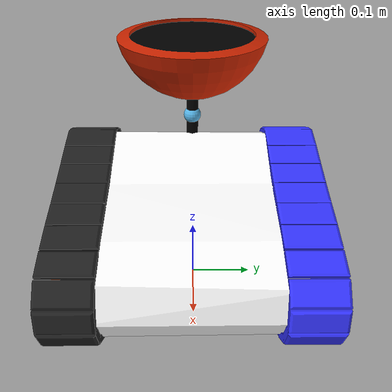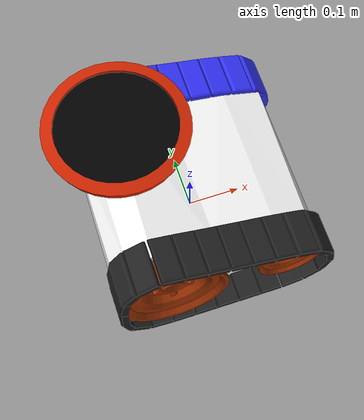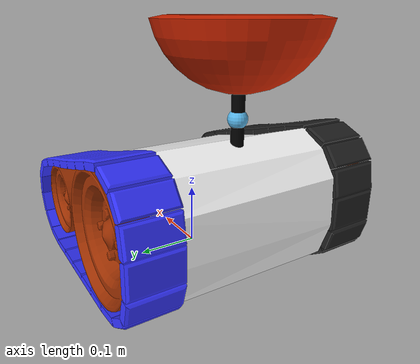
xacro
<?xml version="1.0"?>
<robot xmlns:xacro="http://www.ros.org/wiki/xacro">

    <xacro:include filename="inertia_macros.xacro"/>

    <material name="white">
        <color rgba="1 1 1 1" />
    </material>

    <material name="orange">
        <color rgba="1 0.3 0.1 1" />
    </material>

    <material name="blue">
        <color rgba="0.2 0.2 1 1" />
    </material>

    <material name="black">
        <color rgba="0 0 0 1" />
    </material>

    <!-- BASE -->

    <link name="base_link">
    </link>

    <!-- CHASSIS -->

    <joint name="chassis_joint" type="fixed" >
        <parent link="base_link" />
        <child link="chassis" />
        <origin xyz="0 0 0" rpy="0 0 ${pi/2}"/>
    </joint>

    <link name="chassis">
        <visual>
            <origin xyz="0 0.02 0.095"/>
            <geometry>
                <mesh filename="package://fonbot_package/models/chassis2.dae" scale="0.4 0.2 0.2"/>
            </geometry>
            <material name="white" />
        </visual>
        <collision>
            <origin xyz="0 0.02 0.095"/>
            <geometry>
                <mesh filename="package://fonbot_package/models/chassis2.dae" scale="0.4 0.2 0.2"/>
            </geometry>
        </collision>
        <xacro:inertial_box mass="0.5" x="0.4" y="0.4" z="0.2">
            <origin xyz="0 0.02 0.095" rpy="0 0 0"/>
        </xacro:inertial_box>
    </link>

    <!-- LEFT TRACK -->

    <joint name="left_track_joint" type="fixed">
        <parent link="chassis"/>
        <child link="left_track"/>
        <origin xyz="0.175 0 0.075" rpy="0 0 0"/>
        <axis xyz="-1 0 0" />
    </joint>

    <link name="left_track">
        <visual>
            <geometry>
                <mesh filename="package://fonbot_package/models/tank-track-asym.dae" scale="0.2 0.2 0.2"/>
            </geometry>
            <material name="blue"/>
        </visual>
        <collision>
            <geometry>
                <mesh filename="package://fonbot_package/models/tank-track-asym.dae" scale="0.2 0.2 0.2"/>
            </geometry>
        </collision>
        <xacro:inertial_box mass="0.1" x="0.1" y="0.4" z="0.15">
            <origin xyz="0 0 0" rpy="0 0 0"/>
        </xacro:inertial_box>
    </link>

    <!-- LEFT TRACK WHEELS -->
    <joint name="left_track_large_wheel_joint" type="continuous">
        <parent link="left_track"/>
        <child link="large_wheel_left"/>
        <origin xyz="0 0.095 0.03"/>
        <axis xyz="-1 0 0"/>
    </joint>

    <link name="large_wheel_left">
        <visual>
            <geometry>
                <mesh filename="package://fonbot_package/models/tank-wheel.dae" scale="0.32 0.32 0.32"/>
            </geometry>
        </visual>
        <collision>
            <geometry>
                <mesh filename="package://fonbot_package/models/tank-wheel.dae" scale="0.32 0.32 0.32"/>
            </geometry>
        </collision>
        <xacro:inertial_cylinder mass="0.1" length="0.05" radius="0.1">
            <origin xyz="0 0 0" rpy="0 ${pi/2} 0" />
        </xacro:inertial_cylinder>
    </link>

    <joint name="left_track_small_wheel_joint" type="continuous">
        <parent link="left_track"/>
        <child link="small_wheel_left"/>
        <origin xyz="0 -0.13 0"/>
        <axis xyz="-1 0 0"/>
    </joint>

    <link name="small_wheel_left">
        <visual>
            <geometry>
                <mesh filename="package://fonbot_package/models/tank-wheel.dae" scale="0.2 0.2 0.2"/>
            </geometry>
        </visual>
        <collision>
            <geometry>
                <mesh filename="package://fonbot_package/models/tank-wheel.dae" scale="0.2 0.2 0.2"/>
            </geometry>
        </collision>
        <xacro:inertial_cylinder mass="0.05" length="0.05" radius="0.05">
            <origin xyz="0 0 0" rpy="0 ${pi/2} 0" />
        </xacro:inertial_cylinder>
    </link>

    <!-- RIGHT TRACK -->

    <joint name="right_track_joint" type="fixed">
        <parent link="chassis"/>
        <child link="right_track"/>
        <origin xyz="-0.175 0 0.075" rpy="0 0 0" />
        <axis xyz="0 0 -1" />
    </joint>

    <link name="right_track">
        <visual>
            <geometry>
                <mesh filename="package://fonbot_package/models/tank-track-asym.dae" scale="0.2 0.2 0.2"/>
            </geometry>
        </visual>
        <collision>
            <geometry>
                <mesh filename="package://fonbot_package/models/tank-track-asym.dae" scale="0.2 0.2 0.2"/>
            </geometry>
        </collision>
        <xacro:inertial_box mass="0.1" x="0.1" y="0.4" z="0.15">
            <origin xyz="0 0 0" rpy="0 0 0"/>
        </xacro:inertial_box>
    </link>

    <!-- RIGHT TRACK WHEELS -->
    <joint name="right_track_large_wheel_joint" type="continuous">
        <parent link="right_track"/>
        <child link="large_wheel_right"/>
        <origin xyz="0 0.095 0.03" rpy="0 0 ${pi}"/>
        <axis xyz="1 0 0"/>
    </joint>

    <link name="large_wheel_right">
        <visual>
            <geometry>
                <mesh filename="package://fonbot_package/models/tank-wheel.dae" scale="0.32 0.32 0.32"/>
            </geometry>
        </visual>
        <collision>
            <geometry>
                <mesh filename="package://fonbot_package/models/tank-wheel.dae" scale="0.32 0.32 0.32"/>
            </geometry>
        </collision>
        <xacro:inertial_cylinder mass="0.1" length="0.05" radius="0.1">
            <origin xyz="0 0 0" rpy="0 ${pi/2} 0" />
        </xacro:inertial_cylinder>
    </link>

    <joint name="right_track_small_wheel_joint" type="continuous">
        <parent link="right_track"/>
        <child link="small_wheel_right"/>
        <origin xyz="0 -0.13 0" rpy="0 0 ${pi}"/>
        <axis xyz="1 0 0"/>
    </joint>

    <link name="small_wheel_right">
        <visual>
            <geometry>
                <mesh filename="package://fonbot_package/models/tank-wheel.dae" scale="0.2 0.2 0.2"/>
            </geometry>
        </visual>
        <collision>
            <geometry>
                <mesh filename="package://fonbot_package/models/tank-wheel.dae" scale="0.2 0.2 0.2"/>
            </geometry>
        </collision>
        <xacro:inertial_cylinder mass="0.1" length="0.05" radius="0.05">
            <origin xyz="0 0 0" rpy="0 ${pi/2} 0" />
        </xacro:inertial_cylinder>
    </link>

    <!-- HEAD ARM -->
    <joint name="chassis_connector_joint" type="fixed">
        <parent link="chassis" />
        <child link="chassis_connector" />
        <origin xyz="0 0.125 0.225" />
    </joint>

    <link name="chassis_connector">
        <visual>
            <geometry>
                <cylinder radius="0.01" length="0.05" />
            </geometry>
            <material name="black" />
        </visual>
        <collision>
            <geometry>
                <cylinder radius="0.01" length="0.05" />
            </geometry>
        </collision>
        <xacro:inertial_cylinder mass="0.01" length="0.05" radius="0.01">
            <origin xyz="0 0 0" rpy="0 0 0" />
        </xacro:inertial_cylinder>
    </link>

    <joint name="head_rotation_point_joint" type="fixed">
        <parent link="chassis_connector"/>
        <child link="head_rotation_point"/>
        <origin xyz="0 0 0.025" rpy="0.0 0.0 0.0"/>
    </joint>

    <link name="head_rotation_point">
        <visual>
            <geometry>
                <sphere radius="0.015"/>
            </geometry>
        </visual>
        <collision>
            <geometry>
                <sphere radius="0.015"/>
            </geometry>
        </collision>
        <xacro:inertial_sphere mass="0.01" radius="0.015">
            <origin xyz="0 0 0" rpy="0 0 0" />
        </xacro:inertial_sphere>
    </link>

    <joint name="head_connector_joint" type="revolute">
        <parent link="head_rotation_point" />
        <child link="head_connector" />
        <origin xyz="0 0 0.0075" />
        <limit effort="1000.0" lower="0.0" upper="${4*pi/7}" velocity="0.5"/>
        <axis xyz="-1 0 0"/>
    </joint>

    <link name="head_connector">
        <visual>
            <origin xyz="0 0 0.025"/>
            <geometry>
                <cylinder radius="0.01" length="0.05" />
            </geometry>
            <material name="black" />
        </visual>
        <collision>
            <origin xyz="0 0 0.025"/>
            <geometry>
                <cylinder radius="0.01" length="0.05" />
            </geometry>
        </collision>
        <xacro:inertial_cylinder mass="0.01" length="0.05" radius="0.01">
            <origin xyz="0 0 0" rpy="0 0 0" />
        </xacro:inertial_cylinder>
    </link>

    <!-- HEAD -->

    <joint name="head_joint" type="fixed">
        <parent link="head_connector"/>
        <child link="head"/>
        <origin xyz="0 0 0.05" rpy="${pi/2} 0 0"/>
    </joint>

    <link name="head">
        <visual>
            <origin xyz="0 0.05 0"/>
            <geometry>
                <mesh filename="package://fonbot_package/models/head.dae" scale="0.2 0.2 0.2"/>
            </geometry>
        </visual>
        <collision>
            <origin xyz="0 0.05 0"/>
            <geometry>
                <mesh filename="package://fonbot_package/models/head.dae" scale="0.2 0.2 0.2"/>
            </geometry>
        </collision>
        <xacro:inertial_box mass="0.01" x="0.2" y="0.08" z="0.2">
            <origin xyz="0 0.05 0" rpy="0 0 0" />
        </xacro:inertial_box>
    </link>

</robot>
